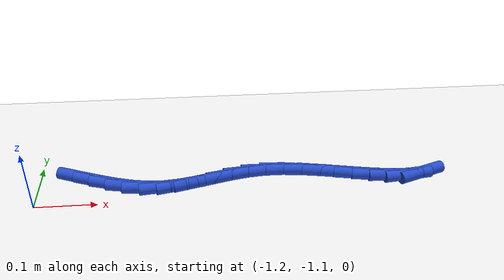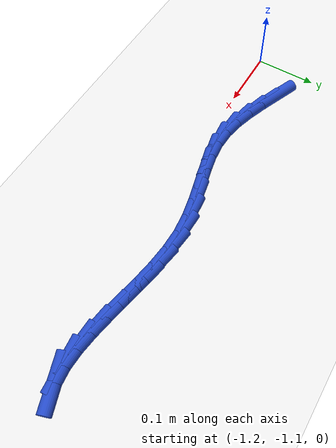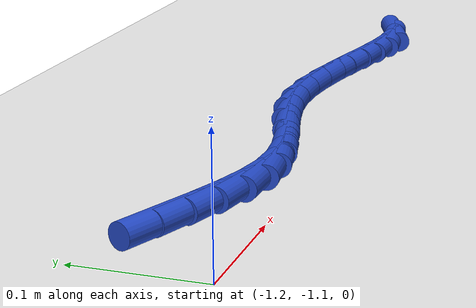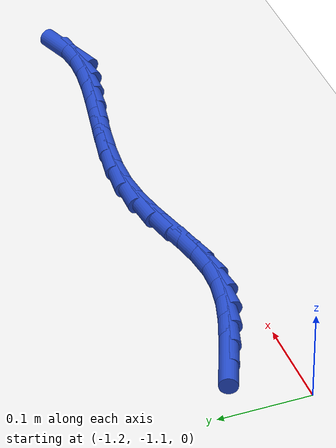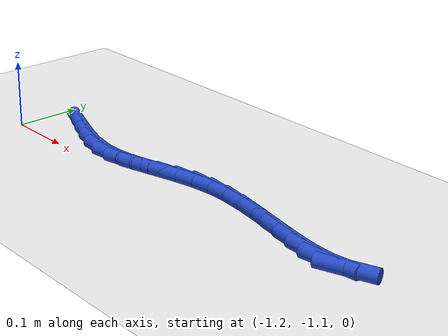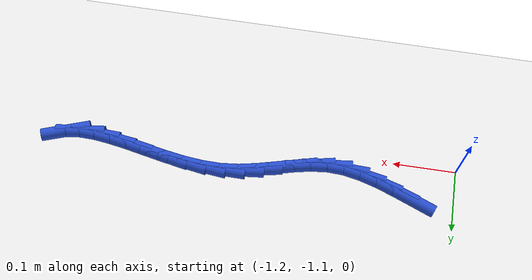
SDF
<sdf version="1.6">
 <world name="default">
  <model name="ground_plane">
   <static>1</static>
   <link name="link">
    <collision name="collision">
     <geometry><plane><normal>0 0 1</normal><size>100 100</size></plane></geometry>
     <surface><friction><ode><mu>100</mu><mu2>50</mu2></ode></friction></surface>
    </collision>
    <visual name="visual">
     <cast_shadows>0</cast_shadows>
     <geometry><plane><normal>0 0 1</normal><size>100 100</size></plane></geometry>
     <material>
      <script><uri>file://media/materials/scripts/gazebo.material</uri><name>Gazebo/WhiteGlow</name></script>
     </material>
    </visual>
   </link>
  </model>
  <model name="line">
   <link name="link_185">
    <pose>-1.1323900544132253 -1.039256407273079 0.01 0 1.57 -0.38484684685609805</pose>
    <collision name="collision">
     <geometry><cylinder><radius>0.01</radius><length>0.08</length></cylinder></geometry>
    </collision>
    <visual name="visual">
     <material>
      <script><name>Gazebo/Blue</name><uri>file://media/materials/scripts/gazebo.material</uri></script>
     </material>
     <geometry><cylinder><radius>0.01</radius><length>0.08</length></cylinder></geometry>
    </visual>
   </link>
   <link name="link_186">
    <pose>-1.105040604946387 -1.0503341303928155 0.01 0 1.57 -0.3538478350809739</pose>
    <collision name="collision">
     <geometry><cylinder><radius>0.01</radius><length>0.08</length></cylinder></geometry>
    </collision>
    <visual name="visual">
     <material>
      <script><name>Gazebo/Blue</name><uri>file://media/materials/scripts/gazebo.material</uri></script>
     </material>
     <geometry><cylinder><radius>0.01</radius><length>0.08</length></cylinder></geometry>
    </visual>
   </link>
   <link name="link_187">
    <pose>-1.0777453392964027 -1.06041687030641 0.01 0 1.57 -0.28859125190871043</pose>
    <collision name="collision">
     <geometry><cylinder><radius>0.01</radius><length>0.08</length></cylinder></geometry>
    </collision>
    <visual name="visual">
     <material>
      <script><name>Gazebo/Blue</name><uri>file://media/materials/scripts/gazebo.material</uri></script>
     </material>
     <geometry><cylinder><radius>0.01</radius><length>0.08</length></cylinder></geometry>
    </visual>
   </link>
   <link name="link_188">
    <pose>-1.0505308213907973 -1.0684962955050183 0.01 0 1.57 -0.18481966922669554</pose>
    <collision name="collision">
     <geometry><cylinder><radius>0.01</radius><length>0.08</length></cylinder></geometry>
    </collision>
    <visual name="visual">
     <material>
      <script><name>Gazebo/Blue</name><uri>file://media/materials/scripts/gazebo.material</uri></script>
     </material>
     <geometry><cylinder><radius>0.01</radius><length>0.08</length></cylinder></geometry>
    </visual>
   </link>
   <link name="link_189">
    <pose>-1.0234236151570961 -1.0735640744797963 0.01 0 1.57 -0.03936135954236863</pose>
    <collision name="collision">
     <geometry><cylinder><radius>0.01</radius><length>0.08</length></cylinder></geometry>
    </collision>
    <visual name="visual">
     <material>
      <script><name>Gazebo/Blue</name><uri>file://media/materials/scripts/gazebo.material</uri></script>
     </material>
     <geometry><cylinder><radius>0.01</radius><length>0.08</length></cylinder></geometry>
    </visual>
   </link>
   <link name="link_190">
    <pose>-0.9964489578356189 -1.0746263823389086 0.01 0 1.57 0.1128897642616274</pose>
    <collision name="collision">
     <geometry><cylinder><radius>0.01</radius><length>0.08</length></cylinder></geometry>
    </collision>
    <visual name="visual">
     <material>
      <script><name>Gazebo/Blue</name><uri>file://media/materials/scripts/gazebo.material</uri></script>
     </material>
     <geometry><cylinder><radius>0.01</radius><length>0.08</length></cylinder></geometry>
    </visual>
   </link>
   <link name="link_191">
    <pose>-0.9695509204088176 -1.0715769039304908 0.01 0 1.57 0.21446942270242741</pose>
    <collision name="collision">
     <geometry><cylinder><radius>0.01</radius><length>0.08</length></cylinder></geometry>
    </collision>
    <visual name="visual">
     <material>
      <script><name>Gazebo/Blue</name><uri>file://media/materials/scripts/gazebo.material</uri></script>
     </material>
     <geometry><cylinder><radius>0.01</radius><length>0.08</length></cylinder></geometry>
    </visual>
   </link>
   <link name="link_192">
    <pose>-0.942546857921959 -1.0656948952921719 0.01 0 1.57 0.26176216092802407</pose>
    <collision name="collision">
     <geometry><cylinder><radius>0.01</radius><length>0.08</length></cylinder></geometry>
    </collision>
    <visual name="visual">
     <material>
      <script><name>Gazebo/Blue</name><uri>file://media/materials/scripts/gazebo.material</uri></script>
     </material>
     <geometry><cylinder><radius>0.01</radius><length>0.08</length></cylinder></geometry>
    </visual>
   </link>
   <link name="link_193">
    <pose>-0.9152431182770515 -1.0583799697024916 0.01 0 1.57 0.25844077545523664</pose>
    <collision name="collision">
     <geometry><cylinder><radius>0.01</radius><length>0.08</length></cylinder></geometry>
    </collision>
    <visual name="visual">
     <material>
      <script><name>Gazebo/Blue</name><uri>file://media/materials/scripts/gazebo.material</uri></script>
     </material>
     <geometry><cylinder><radius>0.01</radius><length>0.08</length></cylinder></geometry>
    </visual>
   </link>
   <link name="link_194">
    <pose>-0.8874460493761029 -1.0510317404399896 0.01 0 1.57 0.20700124267125222</pose>
    <collision name="collision">
     <geometry><cylinder><radius>0.01</radius><length>0.08</length></cylinder></geometry>
    </collision>
    <visual name="visual">
     <material>
      <script><name>Gazebo/Blue</name><uri>file://media/materials/scripts/gazebo.material</uri></script>
     </material>
     <geometry><cylinder><radius>0.01</radius><length>0.08</length></cylinder></geometry>
    </visual>
   </link>
   <link name="link_195">
    <pose>-0.8589619991211209 -1.045049820783205 0.01 0 1.57 0.10918023930582603</pose>
    <collision name="collision">
     <geometry><cylinder><radius>0.01</radius><length>0.08</length></cylinder></geometry>
    </collision>
    <visual name="visual">
     <material>
      <script><name>Gazebo/Blue</name><uri>file://media/materials/scripts/gazebo.material</uri></script>
     </material>
     <geometry><cylinder><radius>0.01</radius><length>0.08</length></cylinder></geometry>
    </visual>
   </link>
   <link name="link_196">
    <pose>-0.8295980413486507 -1.0418310571020113 0.01 0 1.57 -0.009844603331859558</pose>
    <collision name="collision">
     <geometry><cylinder><radius>0.01</radius><length>0.08</length></cylinder></geometry>
    </collision>
    <visual name="visual">
     <material>
      <script><name>Gazebo/Blue</name><uri>file://media/materials/scripts/gazebo.material</uri></script>
     </material>
     <geometry><cylinder><radius>0.01</radius><length>0.08</length></cylinder></geometry>
    </visual>
   </link>
   <link name="link_197">
    <pose>-0.7993300155244236 -1.0421290434365207 0.01 0 1.57 -0.10040943044705922</pose>
    <collision name="collision">
     <geometry><cylinder><radius>0.01</radius><length>0.08</length></cylinder></geometry>
    </collision>
    <visual name="visual">
     <material>
      <script><name>Gazebo/Blue</name><uri>file://media/materials/scripts/gazebo.material</uri></script>
     </material>
     <geometry><cylinder><radius>0.01</radius><length>0.08</length></cylinder></geometry>
    </visual>
   </link>
   <link name="link_198">
    <pose>-0.768517876748607 -1.0452333122288877 0.01 0 1.57 -0.16012115178091713</pose>
    <collision name="collision">
     <geometry><cylinder><radius>0.01</radius><length>0.08</length></cylinder></geometry>
    </collision>
    <visual name="visual">
     <material>
      <script><name>Gazebo/Blue</name><uri>file://media/materials/scripts/gazebo.material</uri></script>
     </material>
     <geometry><cylinder><radius>0.01</radius><length>0.08</length></cylinder></geometry>
    </visual>
   </link>
   <link name="link_199">
    <pose>-0.7375747484651279 -1.0502307441066885 0.01 0 1.57 -0.19253871389354035</pose>
    <collision name="collision">
     <geometry><cylinder><radius>0.01</radius><length>0.08</length></cylinder></geometry>
    </collision>
    <visual name="visual">
     <material>
      <script><name>Gazebo/Blue</name><uri>file://media/materials/scripts/gazebo.material</uri></script>
     </material>
     <geometry><cylinder><radius>0.01</radius><length>0.08</length></cylinder></geometry>
    </visual>
   </link>
   <link name="link_200">
    <pose>-0.7069137541179128 -1.0562082196974998 0.01 0 1.57 -0.19903960544932983</pose>
    <collision name="collision">
     <geometry><cylinder><radius>0.01</radius><length>0.08</length></cylinder></geometry>
    </collision>
    <visual name="visual">
     <material>
      <script><name>Gazebo/Blue</name><uri>file://media/materials/scripts/gazebo.material</uri></script>
     </material>
     <geometry><cylinder><radius>0.01</radius><length>0.08</length></cylinder></geometry>
    </visual>
   </link>
   <link name="link_201">
    <pose>-0.676948017150889 -1.0622526196288977 0.01 0 1.57 -0.17822319666487824</pose>
    <collision name="collision">
     <geometry><cylinder><radius>0.01</radius><length>0.08</length></cylinder></geometry>
    </collision>
    <visual name="visual">
     <material>
      <script><name>Gazebo/Blue</name><uri>file://media/materials/scripts/gazebo.material</uri></script>
     </material>
     <geometry><cylinder><radius>0.01</radius><length>0.08</length></cylinder></geometry>
    </visual>
   </link>
   <link name="link_202">
    <pose>-0.6480906610079835 -1.067450824528459 0.01 0 1.57 -0.1251440614887872</pose>
    <collision name="collision">
     <geometry><cylinder><radius>0.01</radius><length>0.08</length></cylinder></geometry>
    </collision>
    <visual name="visual">
     <material>
      <script><name>Gazebo/Blue</name><uri>file://media/materials/scripts/gazebo.material</uri></script>
     </material>
     <geometry><cylinder><radius>0.01</radius><length>0.08</length></cylinder></geometry>
    </visual>
   </link>
   <link name="link_203">
    <pose>-0.6207548091331235 -1.070889715023761 0.01 0 1.57 -0.030164854597722595</pose>
    <collision name="collision">
     <geometry><cylinder><radius>0.01</radius><length>0.08</length></cylinder></geometry>
    </collision>
    <visual name="visual">
     <material>
      <script><name>Gazebo/Blue</name><uri>file://media/materials/scripts/gazebo.material</uri></script>
     </material>
     <geometry><cylinder><radius>0.01</radius><length>0.08</length></cylinder></geometry>
    </visual>
   </link>
   <link name="link_204">
    <pose>-0.5953535849702356 -1.0716561717423791 0.01 0 1.57 0.12168098273741565</pose>
    <collision name="collision">
     <geometry><cylinder><radius>0.01</radius><length>0.08</length></cylinder></geometry>
    </collision>
    <visual name="visual">
     <material>
      <script><name>Gazebo/Blue</name><uri>file://media/materials/scripts/gazebo.material</uri></script>
     </material>
     <geometry><cylinder><radius>0.01</radius><length>0.08</length></cylinder></geometry>
    </visual>
   </link>
   <link name="link_205">
    <pose>-0.572300111963247 -1.0688370753118905 0.01 0 1.57 0.34548480564396133</pose>
    <collision name="collision">
     <geometry><cylinder><radius>0.01</radius><length>0.08</length></cylinder></geometry>
    </collision>
    <visual name="visual">
     <material>
      <script><name>Gazebo/Blue</name><uri>file://media/materials/scripts/gazebo.material</uri></script>
     </material>
     <geometry><cylinder><radius>0.01</radius><length>0.08</length></cylinder></geometry>
    </visual>
   </link>
  </model>
 </world>
</sdf>
